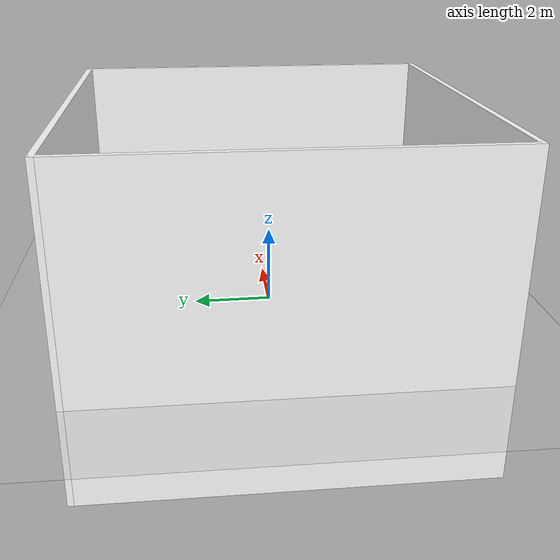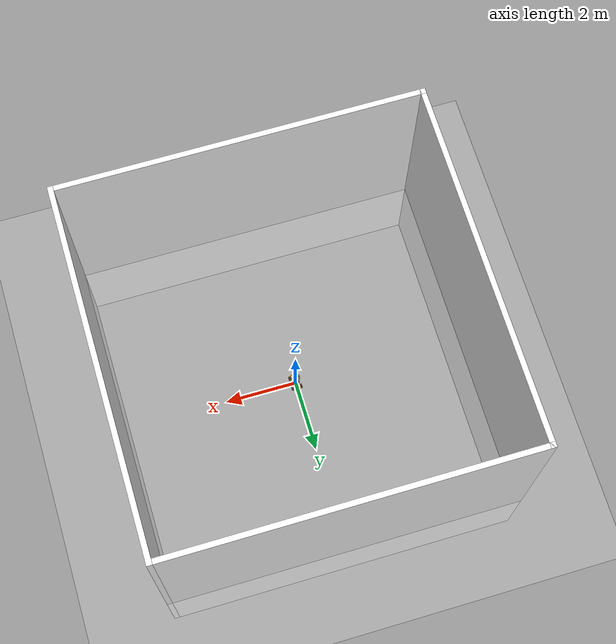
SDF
<sdf version="1.7">
 <world name="default">
  <model name="ground_plane">
   <static>1</static>
   <link name="link">
    <collision name="collision">
     <geometry><plane><normal>0 0 1</normal><size>10 10</size></plane></geometry>
     <surface><friction><ode><mu>100</mu><mu2>50</mu2></ode></friction></surface>
    </collision>
    <visual name="visual">
     <cast_shadows>0</cast_shadows>
     <geometry><plane><normal>0 0 1</normal><size>10 10</size></plane></geometry>
     <material>
      <script>
       <uri>model://materials/scripts</uri>
       <uri>model://materials/textures</uri>
       <name>Gazebo/GE</name>
      </script>
     </material>
    </visual>
    <velocity_decay><linear>0</linear><angular>0</angular></velocity_decay>
   </link>
  </model>
  <physics type="ode">
   <max_step_size>0.001</max_step_size>
   <real_time_factor>1</real_time_factor>
   <real_time_update_rate>1000</real_time_update_rate>
   <gravity>0 0 -9.8</gravity>
  </physics>
  <scene><ambient>0.4 0.4 0.4 1</ambient><background>0.7 0.7 0.7 1</background><shadows>1</shadows></scene>
  <spherical_coordinates>
   <surface_model>EARTH_WGS84</surface_model>
   <latitude_deg>0</latitude_deg>
   <longitude_deg>0</longitude_deg>
   <elevation>0</elevation>
   <heading_deg>0</heading_deg>
  </spherical_coordinates>
  <model name="dae">
   <static>1</static>
   <link name="link">
    <collision name="collision"><geometry><box><size>0.01 0.01 0.01</size></box></geometry></collision>
    <visual name="visual">
     <geometry><mesh><scale>6 6 6</scale><uri>model://lego_truck/lego_truck.dae</uri></mesh></geometry>
    </visual>
    <velocity_decay><linear>0</linear><angular>0</angular></velocity_decay>
   </link>
  </model>
  <model name="walls">
   <pose>0.043605 -0.013475 0 0 -0 0</pose>
   <link name="Wall_2">
    <collision name="Wall_2_Collision">
     <geometry><box><size>10 0.15 8</size></box></geometry>
     <pose>0 0 1.5 0 -0 0</pose>
    </collision>
    <visual name="Wall_2_Visual">
     <pose>0 0 1.5 0 -0 0</pose>
     <geometry><box><size>10 0.15 8</size></box></geometry>
     <material>
      <script>
       <uri>model://materials/scripts</uri>
       <uri>model://materials/textures</uri>
       <name>Gazebo/G</name>
      </script>
      <ambient>1 1 1 1</ambient>
     </material>
     <meta><layer>0</layer></meta>
    </visual>
    <pose>-4.925 0 0 0 -0 -1.5708</pose>
   </link>
   <link name="Wall_3">
    <collision name="Wall_3_Collision">
     <geometry><box><size>10 0.15 8</size></box></geometry>
     <pose>0 0 1.5 0 -0 0</pose>
    </collision>
    <visual name="Wall_3_Visual">
     <pose>0 0 1.5 0 -0 0</pose>
     <geometry><box><size>10 0.15 8</size></box></geometry>
     <material>
      <script>
       <uri>model://materials/scripts</uri>
       <uri>model://materials/textures</uri>
       <name>Gazebo/C</name>
      </script>
      <ambient>1 1 1 1</ambient>
     </material>
     <meta><layer>0</layer></meta>
    </visual>
    <pose>0 -4.925 0 0 -0 0</pose>
   </link>
   <link name="Wall_4">
    <collision name="Wall_4_Collision">
     <geometry><box><size>10 0.15 8</size></box></geometry>
     <pose>0 0 1.5 0 -0 0</pose>
    </collision>
    <visual name="Wall_4_Visual">
     <pose>0 0 1.5 0 -0 0</pose>
     <geometry><box><size>10 0.15 8</size></box></geometry>
     <material>
      <script>
       <uri>model://materials/scripts</uri>
       <uri>model://materials/textures</uri>
       <name>Gazebo/H</name>
      </script>
      <ambient>1 1 1 1</ambient>
     </material>
     <meta><layer>0</layer></meta>
    </visual>
    <pose>4.925 0 0 0 -0 1.5708</pose>
   </link>
   <link name="Wall_5">
    <collision name="Wall_5_Collision">
     <geometry><box><size>10 0.15 8</size></box></geometry>
     <pose>0 0 1.5 0 -0 0</pose>
    </collision>
    <visual name="Wall_5_Visual">
     <pose>0 0 1.5 0 -0 0</pose>
     <geometry><box><size>10 0.15 8</size></box></geometry>
     <material>
      <script>
       <uri>model://materials/scripts</uri>
       <uri>model://materials/textures</uri>
       <name>Gazebo/PG</name>
      </script>
      <ambient>1 1 1 1</ambient>
     </material>
     <meta><layer>0</layer></meta>
    </visual>
    <pose>0 4.925 0 0 -0 3.14159</pose>
   </link>
   <static>1</static>
  </model>
  <light name="user_point_light_0" type="point">
   <pose>-1.53304 1 1 0 -0 0</pose>
   <diffuse>0.5 0.5 0.5 1</diffuse>
   <specular>0.1 0.1 0.1 1</specular>
   <attenuation>
    <range>20</range>
    <constant>0.5</constant>
    <linear>0.01</linear>
    <quadratic>0.001</quadratic>
   </attenuation>
   <cast_shadows>0</cast_shadows>
   <direction>0 0 -1</direction>
   <spot><inner_angle>0</inner_angle><outer_angle>0</outer_angle><falloff>0</falloff></spot>
  </light>
  <light name="user_point_light_1" type="point">
   <pose>1.53304 1 1 0 -0 0</pose>
   <diffuse>0.5 0.5 0.5 1</diffuse>
   <specular>0.1 0.1 0.1 1</specular>
   <attenuation>
    <range>20</range>
    <constant>0.5</constant>
    <linear>0.01</linear>
    <quadratic>0.001</quadratic>
   </attenuation>
   <cast_shadows>0</cast_shadows>
   <direction>0 0 -1</direction>
   <spot><inner_angle>0</inner_angle><outer_angle>0</outer_angle><falloff>0</falloff></spot>
  </light>
  <light name="user_point_light_2" type="point">
   <pose>0 -1 1 0 -0 0</pose>
   <diffuse>0.5 0.5 0.5 1</diffuse>
   <specular>0.1 0.1 0.1 1</specular>
   <attenuation>
    <range>20</range>
    <constant>0.5</constant>
    <linear>0.01</linear>
    <quadratic>0.001</quadratic>
   </attenuation>
   <cast_shadows>0</cast_shadows>
   <direction>0 0 -1</direction>
   <spot><inner_angle>0</inner_angle><outer_angle>0</outer_angle><falloff>0</falloff></spot>
  </light>
 </world>
</sdf>
